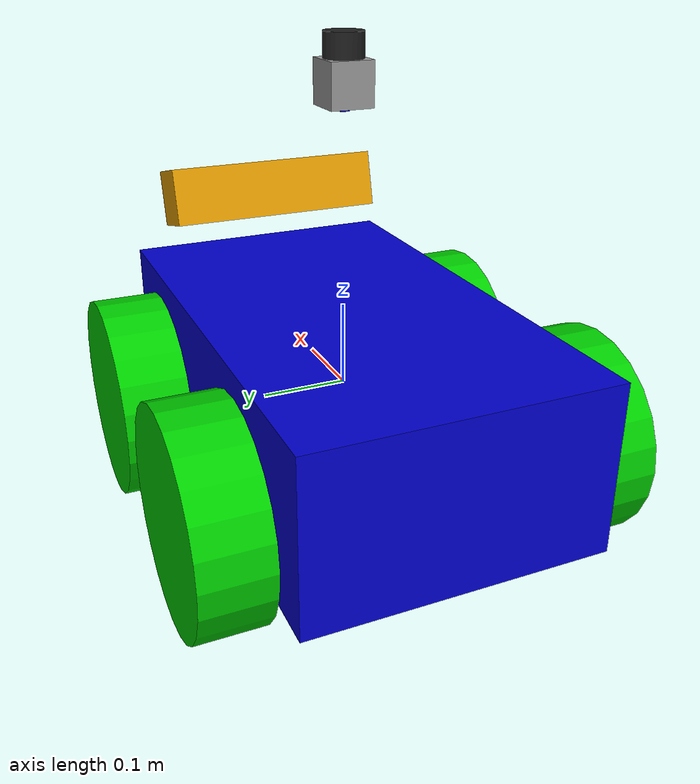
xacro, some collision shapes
<?xml version="1.0"?>
<robot name="Volksbot"
	xmlns:xi="http://www.w3.org/2001/XInclude"
	xmlns:gazebo="http://playerstage.sourceforge.net/gazebo/xmlschema/#gz"
	xmlns:model="http://playerstage.sourceforge.net/gazebo/xmlschema/#model"
	xmlns:sensor="http://playerstage.sourceforge.net/gazebo/xmlschema/#sensor"
	xmlns:body="http://playerstage.sourceforge.net/gazebo/xmlschema/#body"
	xmlns:geom="http://playerstage.sourceforge.net/gazebo/xmlschema/#geom"
	xmlns:joint="http://playerstage.sourceforge.net/gazebo/xmlschema/#joint"
	xmlns:controller="http://playerstage.sourceforge.net/gazebo/xmlschema/#controller"
	xmlns:interface="http://playerstage.sourceforge.net/gazebo/xmlschema/#interface"
	xmlns:rendering="http://playerstage.sourceforge.net/gazebo/xmlschema/#rendering"
	xmlns:renderable="http://playerstage.sourceforge.net/gazebo/xmlschema/#renderable"
	xmlns:physics="http://playerstage.sourceforge.net/gazebo/xmlschema/#physics"
	xmlns:xacro="http://ros.org/wiki/xacro"
>

<!--Variable Pi definieren-->
<property name="pi" value="3.1415926535897931"/>
<property name="mass_base" value="25"/>
<property name="mass_wheel" value="0.75"/>

<!--base_footprint is a fictitious link(frame) that is on the ground right below base_link origin, navigation stack depends on this frame-->
	<link name="base_footprint">
		<visual>
			<geometry>
				<box size="0.001 0.001 0.001"/>
			</geometry>
			<origin rpy="0 0 0" xyz="0 0 0"/>
		</visual>
		<collision>
			<geometry>
				<box size="0.001 0.001 0.001"/>
			</geometry>
			<origin xyz="0 0 0"/>
		</collision>
		<inertial>
			<mass value="0.0001"/>
			<inertia ixx="0.0001" ixy="0.0" ixz="0.0" iyy="0.0001" iyz="0.0" izz="0.0001"/>
			<origin xyz="0 0 0.0" />
		</inertial>
	</link>

<!--Main Body-->
	<link name="base_link">
		<visual>
			<geometry>
				<box size="0.6 0.35 0.2"/>
			</geometry>
			<origin rpy="0 0 0" xyz="0 0 0"/>
			<material name="blue">
				<color rgba="0 0 .8 1"/>
			</material>
		</visual>
		<collision>
			<geometry>
				<box size="0.6 0.35 0.2"/>
			</geometry>
			<origin xyz="0 0 0"/>
		</collision>
		<inertial>
			<mass value="${mass_base}"/>
			<inertia ixx="0.83333" ixy="0.0" ixz="0.0" iyy="1.0052" iyz="0.0" izz="0.33854"/>
			<origin xyz="0 0 -0.1" />
		</inertial>
	</link>

<!--dummy joint-->
	<joint name="base_footprint_joint" type="fixed">
		<parent link="base_footprint"/>
		<child link="base_link"/>
		<origin rpy="0 0 0" xyz="0 0 0"/>
	</joint>
<!--camera platform-->
	<link name="platform">
		<visual>
			<geometry>
				<box size="0.01 0.01 0.01"/>
			</geometry>
			<origin rpy="0 0 0" xyz="0 0 0"/>
			<material name="red">
				<color rgba="0 0 .8 1"/>
			</material>
		</visual>
		<collision>
			<geometry>
				<box size="0.01 0.01 0.01"/>
			</geometry>
			<origin xyz="0 0 0"/>
		</collision>
		<inertial>
			<mass value="0.001"/>
			<inertia ixx="1.0" ixy="0.0" ixz="0.0" iyy="1.0" iyz="0.0" izz="1.0"/>
			<origin xyz="0 0 0.0" />
		</inertial>
	</link>
<!--position camera platform-->
	<joint name="base_link_to_platform" type="fixed">
		<parent link="base_link"/>
		<child link="platform"/>
		<origin rpy="0 0.25 0" xyz="0.25 0 0.15"/>
	</joint>

<!--laser_platform-->
	<link name="laser_platform">
		<visual>
			<geometry>
				<box size="0.01 0.01 0.01"/>
			</geometry>
			<origin rpy="0 0 0" xyz="0 0 0"/>
			<material name="red">
				<color rgba="0 0 .8 1"/>
			</material>
		</visual>
		<collision>
			<geometry>
				<box size="0.01 0.01 0.01"/>
			</geometry>
			<origin xyz="0 0 0"/>
		</collision>
		<inertial>
			<mass value="0.001"/>
			<inertia ixx="1.0" ixy="0.0" ixz="0.0" iyy="1.0" iyz="0.0" izz="1.0"/>
			<origin xyz="0 0 0.0" />
		</inertial>
	</link>
<!--position laser_platform-->
	<joint name="base_link_to_laser_platform" type="fixed">
		<parent link="base_link"/>
		<child link="laser_platform"/>
		<origin rpy="0 0 0" xyz="0 0 0.33"/>
	</joint>

<!--Rad vorne Rechts-->
	<link name="right_front_wheel">
		<visual>
			<geometry>
				<cylinder length="0.08" radius="0.125"/>
			</geometry>
			<origin rpy="${pi/2} 0 0" xyz="0 0 0"/>
			<material name="green">
				<color rgba="0 0.8 0 1"/>
			</material>
		</visual>
		<collision>
			<geometry>
				<cylinder length="0.08" radius="0.125"/>
			</geometry>
			<origin rpy="${pi/2} 0 0" xyz="0 0 0"/>
		</collision>
		<inertial>
			<mass value="${mass_wheel}"/>
			<inertia ixx="0.0033" ixy="0.0" ixz="0.0" iyy="0.0033" iyz="0.0" izz="0.00586"/>
			<origin xyz="0 0 0.0" />
		</inertial>
	</link>

	<joint name="right_front_wheel_joint" type="continuous">
		<axis xyz="0 1 0"/>
		<parent link="base_link"/>
		<child link="right_front_wheel"/>
		<origin rpy="0 0 0" xyz="0.16 -0.22 -0.045"/>
		<limit effort="100" velocity="100"/>
		<dynamics damping="0.0" friction="0.0"/>
	</joint>
<!--Rad hinten Rechts-->
	<link name="right_back_wheel">
		<visual>
			<geometry>
				<cylinder length="0.08" radius="0.125"/>
			</geometry>
			<origin rpy="${pi/2} 0 0" xyz="0 0 0"/>
			<material name="green">
				<color rgba="0 0.8 0 1"/>
			</material>
		</visual>
		<collision>
			<geometry>
				<cylinder length="0.08" radius="0.125"/>
			</geometry>
			<origin rpy="${pi/2} 0 0" xyz="0 0 0"/>
		</collision>
		<inertial>
			<mass value="${mass_wheel}"/>
			<inertia ixx="0.0033" ixy="0.0" ixz="0.0" iyy="0.0033" iyz="0.0" izz="0.00586"/>
			<origin xyz="0 0 0.0" />
		</inertial>
	</link>

	<joint name="right_back_wheel_joint" type="continuous">
		<axis xyz="0 1 0"/>
		<parent link="base_link"/>
		<child link="right_back_wheel"/>
		<origin rpy="0 0 0" xyz="-0.14 -0.22 -0.045"/>
		<limit effort="100" velocity="100"/>
		<dynamics damping="0.0" friction="0.0"/>
	</joint>
<!--Rad vorne Links-->
	<link name="left_front_wheel">
		<visual>
			<geometry>
				<cylinder length="0.08" radius="0.125"/>
			</geometry>
			<origin rpy="${pi/2} 0 0" xyz="0 0 0"/>
			<material name="green">
				<color rgba="0 0.8 0 1"/>
			</material>
		</visual>
		<collision>
			<geometry>
				<cylinder length="0.08" radius="0.125"/>
			</geometry>
			<origin rpy="${pi/2} 0 0" xyz="0 0 0"/>
		</collision>
		<inertial>
			<mass value="${mass_wheel}"/>
			<inertia ixx="0.0033" ixy="0.0" ixz="0.0" iyy="0.0033" iyz="0.0" izz="0.00586"/>
			<origin xyz="0 0 0.0" />
		</inertial>
	</link>

	<joint name="left_front_wheel_joint" type="continuous">
		<axis xyz="0 1 0"/>
		<parent link="base_link"/>
		<child link="left_front_wheel"/>
		<origin rpy="0 0 0" xyz="0.16 0.22 -0.045"/>
		<limit effort="100" velocity="100"/>
		<dynamics damping="0.0" friction="0.0"/>
	</joint>

<!--Rad hinten Links-->
	<link name="left_back_wheel">
		<visual>
			<geometry>
				<cylinder length="0.08" radius="0.125"/>
			</geometry>
			<origin rpy="${pi/2} 0 0" xyz="0 0 0"/>
			<material name="green">
				<color rgba="0 0.8 0 1"/>
			</material>
		</visual>
		<collision>
			<geometry>
				<cylinder length="0.08" radius="0.125"/>
			</geometry>
			<origin rpy="${pi/2} 0 0" xyz="0 0 0"/>
		</collision>
		<inertial>
			<mass value="${mass_wheel}"/>
			<inertia ixx="0.0033" ixy="0.0" ixz="0.0" iyy="0.0033" iyz="0.0" izz="0.00586"/>
			<origin xyz="0 0 0.0" />
		</inertial>
	</link>

	<joint name="left_back_wheel_joint" type="continuous">
		<axis xyz="0 1 0"/>
		<parent link="base_link"/>
		<child link="left_back_wheel"/>
		<origin rpy="0 0 0" xyz="-0.14 0.22 -0.045"/>
		<limit effort="100" velocity="100"/>
		<dynamics damping="0.0" friction="0.0"/>
	</joint>

  <!-- Kinect frames and mounting (includes simulation) -->
  <joint name="base_camera_joint" type="fixed">
    <origin rpy="0 0 0" xyz="0 0 0.03"/>
    <parent link="platform"/>
    <child link="camera_link"/>
  </joint>
  <link name="camera_link">
    <inertial>
      <mass value="0.01"/>
      <origin xyz="0 0 0"/>
      <inertia ixx="0.001" ixy="0.0" ixz="0.0" iyy="0.001" iyz="0.0" izz="0.001"/>
    </inertial>
    <visual>
      <origin rpy="0 0 0" xyz=" 0 0 0 "/>
      <geometry>
        <mesh filename="package://volksbot_new/meshes/kinect.dae"/>
      </geometry>
    </visual>
    <collision>
      <origin rpy="0 0 0" xyz="0.0 0.0 0.0"/>
      <geometry>
        <box size="0.0730 .2760 0.0720"/>
      </geometry>
    </collision>
  </link>
  <joint name="camera_depth_joint" type="fixed">
    <origin rpy="0 0 0" xyz="0 0.018 0"/>
    <parent link="camera_link"/>
    <child link="camera_depth_frame"/>
  </joint>
  <link name="camera_depth_frame">
    <inertial>
      <mass value="0.01"/>
      <origin xyz="0 0 0"/>
      <inertia ixx="0.001" ixy="0.0" ixz="0.0" iyy="0.001" iyz="0.0" izz="0.001"/>
    </inertial>
  </link>
  <joint name="camera_depth_optical_joint" type="fixed">
    <origin rpy="-1.570795 0 -1.570795" xyz="0 0 0"/>
    <parent link="camera_depth_frame"/>
    <child link="camera_depth_optical_frame"/>
  </joint>
  <link name="camera_depth_optical_frame">
    <inertial>
      <mass value="0.001"/>
      <origin xyz="0 0 0"/>
      <inertia ixx="0.0001" ixy="0.0" ixz="0.0" iyy="0.0001" iyz="0.0" izz="0.0001"/>
    </inertial>
  </link>
  <joint name="camera_rgb_joint" type="fixed">
    <origin rpy="0 0 0" xyz="0 -0.005 0"/>
    <parent link="camera_link"/>
    <child link="camera_rgb_frame"/>
  </joint>
  <link name="camera_rgb_frame">
    <inertial>
      <mass value="0.001"/>
      <origin xyz="0 0 0"/>
      <inertia ixx="0.0001" ixy="0.0" ixz="0.0" iyy="0.0001" iyz="0.0" izz="0.0001"/>
    </inertial>
  </link>
  <joint name="camera_rgb_optical_joint" type="fixed">
    <origin rpy="-1.570795 0 -1.570795" xyz="0 0 0"/>
    <parent link="camera_rgb_frame"/>
    <child link="camera_rgb_optical_frame"/>
  </joint>
  <link name="camera_rgb_optical_frame">
    <inertial>
      <mass value="0.001"/>
      <origin xyz="0 0 0"/>
      <inertia ixx="0.0001" ixy="0.0" ixz="0.0" iyy="0.0001" iyz="0.0" izz="0.0001"/>
    </inertial>
  </link>
<!-- Kinect Einstellungen -->
  <gazebo reference="camera_link">
    <sensor:camera name="camera">
      <imageFormat>R8G8B8</imageFormat>
      <imageSize>640 480</imageSize>
      <hfov>60</hfov>
      <nearClip>0.05</nearClip>
      <farClip>10</farClip>  // Std 3
      <updateRate>20</updateRate>
      <baseline>0.1</baseline>
      <controller:gazebo_ros_openni_kinect name="kinect_camera_controller" plugin="libgazebo_ros_openni_kinect.so">
        <alwaysOn>true</alwaysOn>
        <updateRate>20</updateRate>
        <imageTopicName>/camera/image_raw</imageTopicName>
        <pointCloudTopicName>/camera/depth/points</pointCloudTopicName>
        <cameraInfoTopicName>/camera/camera_info</cameraInfoTopicName>
        <frameName>camera_depth_optical_frame</frameName>
        <distortion_k1>0.0</distortion_k1>
        <distortion_k2>0.0</distortion_k2>
        <distortion_k3>0.0</distortion_k3>
        <distortion_t1>0.0</distortion_t1>
        <distortion_t2>0.0</distortion_t2>
      </controller:gazebo_ros_openni_kinect>
    </sensor:camera>
  </gazebo>

  <!-- BASE LASER ATTACHMENT -->
  <joint name="laser_base_mount_joint" type="fixed">
    <origin rpy="0 0 0" xyz="0 0 0"/>
    <parent link="laser_platform"/>
    <child link="laser_base_link"/>
  </joint>
  <link name="laser_base_link" type="fixed">
    <inertial>
      <mass value="0.1"/>
      <origin xyz="0 0 0.0"/>
      <inertia ixx="0.1" ixy="0" ixz="0" iyy="0.1" iyz="0" izz="0.1"/>
    </inertial>
    <visual>
      <origin rpy="0 0 0" xyz="0 0 0.025"/>
      <geometry>
        <box size="0.05 0.05 0.05"/>
      </geometry>
    </visual>
    <collision>
      <origin rpy="0 0 0" xyz="0 0 0.025"/>
      <geometry>
        <box size="0.05 0.05 0.05"/>
      </geometry>
    </collision>
  </link>
  <joint name="base_scan_joint" type="fixed">
    <origin rpy="0 0 0" xyz="0 0 0.05"/>
    <parent link="laser_base_link"/>
    <child link="base_scan_link"/>
  </joint>
  <link name="base_scan_link" type="laser">
    <inertial>
      <mass value="0.1"/>
      <origin xyz="0 0 0.0"/>
      <inertia ixx="0.1" ixy="0" ixz="0" iyy="0.1" iyz="0" izz="0.1"/>
    </inertial>
    <visual>
      <origin rpy="0 0 0" xyz="0 0 0.014"/>
      <geometry>
        <cylinder length="0.028" radius="0.0229"/>
      </geometry>
    </visual>
    <collision>
      <origin rpy="0 0 0" xyz="0 0 0.014"/>
      <geometry>
        <cylinder length="0.028" radius="0.0229"/>
      </geometry>
    </collision>
  </link>
<!--Laserscanner Einstellungen-->
  <gazebo reference="base_scan_link">
    <sensor:ray name="laser">
      <rayCount>683</rayCount>
      <rangeCount>683</rangeCount>
      <laserCount>1</laserCount>
      <origin>0.0 0.0 0.0</origin>
      <displayRays>false</displayRays>
      <minAngle>-135</minAngle>
      <maxAngle> 135</maxAngle>
      <minRange>0.06</minRange>
      <maxRange>12.0</maxRange>
      <resRange>0.001</resRange>
      <updateRate>10.0</updateRate>
      <controller:gazebo_ros_laser name="gazebo_ros_base_scan_link_controller" plugin="libgazebo_ros_laser.so">
        <gaussianNoise>0.005</gaussianNoise>
        <alwaysOn>true</alwaysOn>
        <updateRate>10.0</updateRate>
        <topicName>base_scan/scan</topicName>
        <frameName>base_scan_link</frameName>
        <interface:laser name="gazebo_ros_base_scan_link_iface"/>
      </controller:gazebo_ros_laser>
    </sensor:ray>
  </gazebo>

<!--Gazebo Einstellungen fuer fuerte geaendert-->
<!--Husky Controller Fahren-->
<!--Husky Controller Fuerte Controller V2012-->
<gazebo>
			<controller:husky_plugin name="husky_diff_controller" plugin="libhusky_plugin2012.so.so">
		        <alwaysOn>true</alwaysOn>
		        <updateRate>100.0</updateRate>
		        <backLeftJoint>left_back_wheel_joint</backLeftJoint>
		        <backRightJoint>right_back_wheel_joint</backRightJoint>
		        <frontLeftJoint>left_front_wheel_joint</frontLeftJoint>
		        <frontRightJoint>right_front_wheel_joint</frontRightJoint>
		        <wheelSeparation>0.44</wheelSeparation>
		        <wheelDiameter>0.25</wheelDiameter>
		        <torque>24</torque>
        </controller:husky_plugin>
	</gazebo>

	<gazebo reference="base_link">
		<material>Gazebo/Blue</material>
		<turnGravityOff>false</turnGravityOff>
	</gazebo>

	<gazebo reference="platform">
		<material>Gazebo/Red</material>
		<turnGravityOff>false</turnGravityOff>
	</gazebo>

	<gazebo reference="right_front_wheel">
		<mu1 value="100"/>
		<mu2 value="100"/>
		<kp value="100000000.0"/>
		<kd value="10000.0"/>
		<fdir value="1 0 0"/>
		<material>Gazebo/Green</material>
		<turnGravityOff>false</turnGravityOff>
	</gazebo>

	<gazebo reference="right_back_wheel">
		<mu1 value="100"/>
		<mu2 value="100"/>
		<kp value="100000000.0"/>
		<kd value="10000.0"/>
		<fdir value="1 0 0"/>
		<material>Gazebo/Green</material>
		<turnGravityOff>false</turnGravityOff>
	</gazebo>

	<gazebo reference="left_front_wheel">
		<mu1 value="100"/>
		<mu2 value="100"/>
		<kp value="100000000.0"/>
		<kd value="10000.0"/>
		<fdir value="1 0 0"/>
		<material>Gazebo/Green</material>
		<turnGravityOff>false</turnGravityOff>
	</gazebo>

	<gazebo reference="left_back_wheel">
		<mu1 value="100"/>  // alte Werte 57
		<mu2 value="100"/> // 1.5
		<kp value="100000000.0"/>  // 1000000.0
		<kd value="10000.0"/>    // 1.0
		<fdir value="1 0 0"/>  // 1 0 0
		<material>Gazebo/Green</material>
		<turnGravityOff>false</turnGravityOff>
	</gazebo>

  <gazebo reference="laser_base_link">
    <material>Gazebo/Grey</material>
  </gazebo>
  <gazebo reference="base_scan_link">
    <material>Gazebo/Black</material>
  </gazebo>

</robot>
